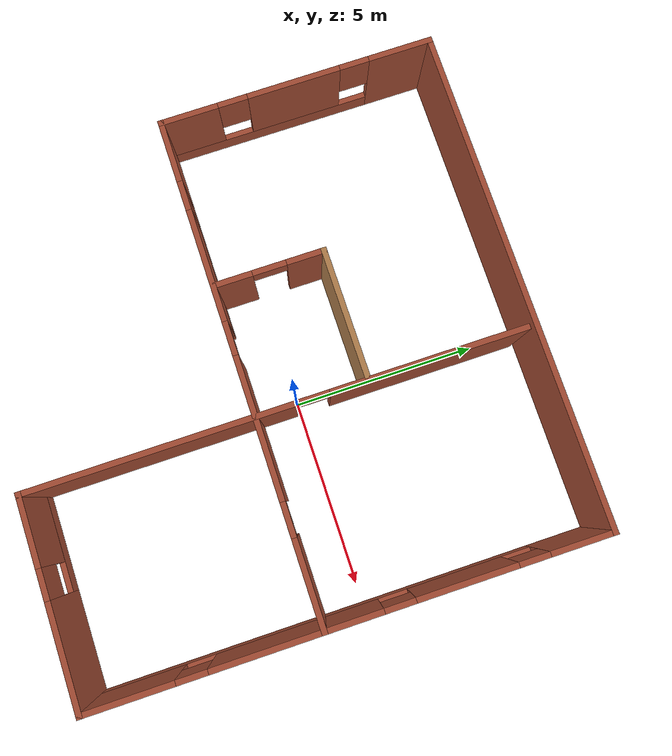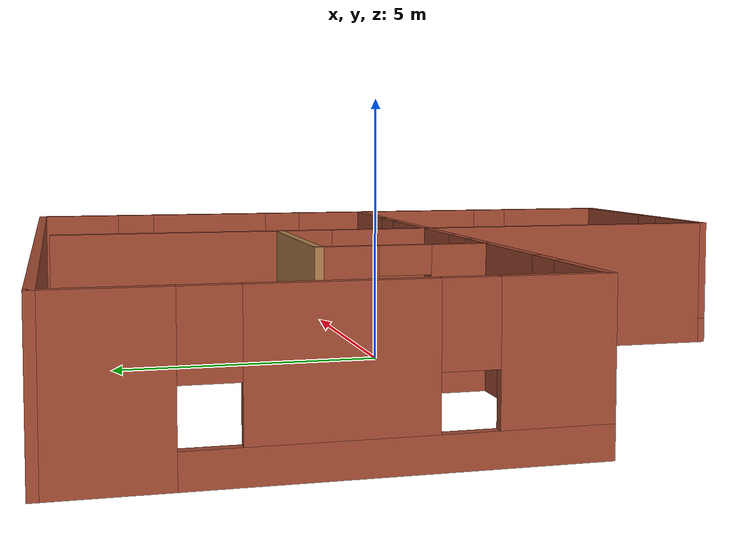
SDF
<?xml version='1.0'?>
<sdf version='1.6'>
  <model name='robot_house'>
    <pose frame=''>-1.10068 -0.427895 0 0 -0 0</pose>
    <link name='Wall_0'>
      <collision name='Wall_0_Collision'>
        <geometry>
          <box>
            <size>13.5 0.15 2.5</size>
          </box>
        </geometry>
        <pose frame=''>0 0 1.25 0 -0 0</pose>
      </collision>
      <visual name='Wall_0_Visual'>
        <pose frame=''>0 0 1.25 0 -0 0</pose>
        <geometry>
          <box>
            <size>13.5 0.15 2.5</size>
          </box>
        </geometry>
        <material>
          <script>
            <uri>file://media/materials/scripts/gazebo.material</uri>
            <name>Gazebo/Bricks</name>
          </script>
          <ambient>1 1 1 1</ambient>
        </material>
        <meta>
          <layer>0</layer>
        </meta>
      </visual>
      <pose frame=''>0 6.675 0 0 -0 0</pose>
    </link>
    <link name='Wall_1'>
      <pose frame=''>6.675 0 0 0 0 -1.5708</pose>
      <visual name='Wall_1_Visual_0'>
        <pose frame=''>-5.88652 0 1.25 0 -0 0</pose>
        <geometry>
          <box>
            <size>1.72695 0.15 2.5</size>
          </box>
        </geometry>
        <material>
          <script>
            <uri>file://media/materials/scripts/gazebo.material</uri>
            <name>Gazebo/Bricks</name>
          </script>
          <ambient>1 1 1 1</ambient>
        </material>
        <meta>
          <layer>0</layer>
        </meta>
      </visual>
      <collision name='Wall_1_Collision_0'>
        <geometry>
          <box>
            <size>1.72695 0.15 2.5</size>
          </box>
        </geometry>
        <pose frame=''>-5.88652 0 1.25 0 -0 0</pose>
      </collision>
      <visual name='Wall_1_Visual_1'>
        <pose frame=''>0.863477 0 0.25 0 -0 0</pose>
        <geometry>
          <box>
            <size>11.773 0.15 0.5</size>
          </box>
        </geometry>
        <material>
          <script>
            <uri>file://media/materials/scripts/gazebo.material</uri>
            <name>Gazebo/Bricks</name>
          </script>
          <ambient>1 1 1 1</ambient>
        </material>
        <meta>
          <layer>0</layer>
        </meta>
      </visual>
      <collision name='Wall_1_Collision_1'>
        <geometry>
          <box>
            <size>11.773 0.15 0.5</size>
          </box>
        </geometry>
        <pose frame=''>0.863477 0 0.25 0 -0 0</pose>
      </collision>
      <visual name='Wall_1_Visual_2'>
        <pose frame=''>-2.92488 0 1.5 0 -0 0</pose>
        <geometry>
          <box>
            <size>2.59634 0.15 2</size>
          </box>
        </geometry>
        <material>
          <script>
            <uri>file://media/materials/scripts/gazebo.material</uri>
            <name>Gazebo/Bricks</name>
          </script>
          <ambient>1 1 1 1</ambient>
        </material>
        <meta>
          <layer>0</layer>
        </meta>
      </visual>
      <collision name='Wall_1_Collision_2'>
        <geometry>
          <box>
            <size>2.59634 0.15 2</size>
          </box>
        </geometry>
        <pose frame=''>-2.92488 0 1.5 0 -0 0</pose>
      </collision>
      <visual name='Wall_1_Visual_3'>
        <pose frame=''>1.35593 0 1.5 0 -0 0</pose>
        <geometry>
          <box>
            <size>4.36526 0.15 2</size>
          </box>
        </geometry>
        <material>
          <script>
            <uri>file://media/materials/scripts/gazebo.material</uri>
            <name>Gazebo/Bricks</name>
          </script>
          <ambient>1 1 1 1</ambient>
        </material>
        <meta>
          <layer>0</layer>
        </meta>
      </visual>
      <collision name='Wall_1_Collision_3'>
        <geometry>
          <box>
            <size>4.36526 0.15 2</size>
          </box>
        </geometry>
        <pose frame=''>1.35593 0 1.5 0 -0 0</pose>
      </collision>
      <visual name='Wall_1_Visual_4'>
        <pose frame=''>5.54428 0 1.5 0 -0 0</pose>
        <geometry>
          <box>
            <size>2.41144 0.15 2</size>
          </box>
        </geometry>
        <material>
          <script>
            <uri>file://media/materials/scripts/gazebo.material</uri>
            <name>Gazebo/Bricks</name>
          </script>
          <ambient>1 1 1 1</ambient>
        </material>
        <meta>
          <layer>0</layer>
        </meta>
      </visual>
      <collision name='Wall_1_Collision_4'>
        <geometry>
          <box>
            <size>2.41144 0.15 2</size>
          </box>
        </geometry>
        <pose frame=''>5.54428 0 1.5 0 -0 0</pose>
      </collision>
      <visual name='Wall_1_Visual_5'>
        <pose frame=''>-4.62305 0 1.9 0 -0 0</pose>
        <geometry>
          <box>
            <size>0.8 0.15 1.2</size>
          </box>
        </geometry>
        <material>
          <script>
            <uri>file://media/materials/scripts/gazebo.material</uri>
            <name>Gazebo/Bricks</name>
          </script>
          <ambient>1 1 1 1</ambient>
        </material>
        <meta>
          <layer>0</layer>
        </meta>
      </visual>
      <collision name='Wall_1_Collision_5'>
        <geometry>
          <box>
            <size>0.8 0.15 1.2</size>
          </box>
        </geometry>
        <pose frame=''>-4.62305 0 1.9 0 -0 0</pose>
      </collision>
      <visual name='Wall_1_Visual_6'>
        <pose frame=''>-1.22671 0 1.9 0 -0 0</pose>
        <geometry>
          <box>
            <size>0.8 0.15 1.2</size>
          </box>
        </geometry>
        <material>
          <script>
            <uri>file://media/materials/scripts/gazebo.material</uri>
            <name>Gazebo/Bricks</name>
          </script>
          <ambient>1 1 1 1</ambient>
        </material>
        <meta>
          <layer>0</layer>
        </meta>
      </visual>
      <collision name='Wall_1_Collision_6'>
        <geometry>
          <box>
            <size>0.8 0.15 1.2</size>
          </box>
        </geometry>
        <pose frame=''>-1.22671 0 1.9 0 -0 0</pose>
      </collision>
      <visual name='Wall_1_Visual_7'>
        <pose frame=''>3.93856 0 1.9 0 -0 0</pose>
        <geometry>
          <box>
            <size>0.8 0.15 1.2</size>
          </box>
        </geometry>
        <material>
          <script>
            <uri>file://media/materials/scripts/gazebo.material</uri>
            <name>Gazebo/Bricks</name>
          </script>
          <ambient>1 1 1 1</ambient>
        </material>
        <meta>
          <layer>0</layer>
        </meta>
      </visual>
      <collision name='Wall_1_Collision_7'>
        <geometry>
          <box>
            <size>0.8 0.15 1.2</size>
          </box>
        </geometry>
        <pose frame=''>3.93856 0 1.9 0 -0 0</pose>
      </collision>
    </link>
    <link name='Wall_2'>
      <pose frame=''>4 -6.675 0 0 -0 3.14159</pose>
      <visual name='Wall_2_Visual_0'>
        <pose frame=''>-1.3497 0 1.25 0 -0 0</pose>
        <geometry>
          <box>
            <size>2.80061 0.15 2.5</size>
          </box>
        </geometry>
        <material>
          <script>
            <uri>file://media/materials/scripts/gazebo.material</uri>
            <name>Gazebo/Bricks</name>
          </script>
          <ambient>1 1 1 1</ambient>
        </material>
        <meta>
          <layer>0</layer>
        </meta>
      </visual>
      <collision name='Wall_2_Collision_0'>
        <geometry>
          <box>
            <size>2.80061 0.15 2.5</size>
          </box>
        </geometry>
        <pose frame=''>-1.3497 0 1.25 0 -0 0</pose>
      </collision>
      <visual name='Wall_2_Visual_1'>
        <pose frame=''>1.4003 0 0.25 0 -0 0</pose>
        <geometry>
          <box>
            <size>2.69939 0.15 0.5</size>
          </box>
        </geometry>
        <material>
          <script>
            <uri>file://media/materials/scripts/gazebo.material</uri>
            <name>Gazebo/Bricks</name>
          </script>
          <ambient>1 1 1 1</ambient>
        </material>
        <meta>
          <layer>0</layer>
        </meta>
      </visual>
      <collision name='Wall_2_Collision_1'>
        <geometry>
          <box>
            <size>2.69939 0.15 0.5</size>
          </box>
        </geometry>
        <pose frame=''>1.4003 0 0.25 0 -0 0</pose>
      </collision>
      <visual name='Wall_2_Visual_2'>
        <pose frame=''>1.8003 0 1.5 0 -0 0</pose>
        <geometry>
          <box>
            <size>1.89939 0.15 2</size>
          </box>
        </geometry>
        <material>
          <script>
            <uri>file://media/materials/scripts/gazebo.material</uri>
            <name>Gazebo/Bricks</name>
          </script>
          <ambient>1 1 1 1</ambient>
        </material>
        <meta>
          <layer>0</layer>
        </meta>
      </visual>
      <collision name='Wall_2_Collision_2'>
        <geometry>
          <box>
            <size>1.89939 0.15 2</size>
          </box>
        </geometry>
        <pose frame=''>1.8003 0 1.5 0 -0 0</pose>
      </collision>
      <visual name='Wall_2_Visual_3'>
        <pose frame=''>0.450605 0 1.9 0 -0 0</pose>
        <geometry>
          <box>
            <size>0.8 0.15 1.2</size>
          </box>
        </geometry>
        <material>
          <script>
            <uri>file://media/materials/scripts/gazebo.material</uri>
            <name>Gazebo/Bricks</name>
          </script>
          <ambient>1 1 1 1</ambient>
        </material>
        <meta>
          <layer>0</layer>
        </meta>
      </visual>
      <collision name='Wall_2_Collision_3'>
        <geometry>
          <box>
            <size>0.8 0.15 1.2</size>
          </box>
        </geometry>
        <pose frame=''>0.450605 0 1.9 0 -0 0</pose>
      </collision>
    </link>
    <link name='Wall_3'>
      <pose frame=''>1.325 -0.125 0 0 -0 1.5708</pose>
      <visual name='Wall_3_Visual_0'>
        <pose frame=''>-3.07392 0 1.25 0 -0 0</pose>
        <geometry>
          <box>
            <size>7.10216 0.15 2.5</size>
          </box>
        </geometry>
        <material>
          <script>
            <uri>file://media/materials/scripts/gazebo.material</uri>
            <name>Gazebo/Bricks</name>
          </script>
          <ambient>1 1 1 1</ambient>
        </material>
        <meta>
          <layer>0</layer>
        </meta>
      </visual>
      <collision name='Wall_3_Collision_0'>
        <geometry>
          <box>
            <size>7.10216 0.15 2.5</size>
          </box>
        </geometry>
        <pose frame=''>-3.07392 0 1.25 0 -0 0</pose>
      </collision>
      <visual name='Wall_3_Visual_1'>
        <pose frame=''>4.00108 0 1.25 0 -0 0</pose>
        <geometry>
          <box>
            <size>5.24784 0.15 2.5</size>
          </box>
        </geometry>
        <material>
          <script>
            <uri>file://media/materials/scripts/gazebo.material</uri>
            <name>Gazebo/Bricks</name>
          </script>
          <ambient>1 1 1 1</ambient>
        </material>
        <meta>
          <layer>0</layer>
        </meta>
      </visual>
      <collision name='Wall_3_Collision_1'>
        <geometry>
          <box>
            <size>5.24784 0.15 2.5</size>
          </box>
        </geometry>
        <pose frame=''>4.00108 0 1.25 0 -0 0</pose>
      </collision>
      <visual name='Wall_3_Visual_2'>
        <pose frame=''>0.927164 0 2.25 0 -0 0</pose>
        <geometry>
          <box>
            <size>0.9 0.15 0.5</size>
          </box>
        </geometry>
        <material>
          <script>
            <uri>file://media/materials/scripts/gazebo.material</uri>
            <name>Gazebo/Bricks</name>
          </script>
          <ambient>1 1 1 1</ambient>
        </material>
        <meta>
          <layer>0</layer>
        </meta>
      </visual>
      <collision name='Wall_3_Collision_2'>
        <geometry>
          <box>
            <size>0.9 0.15 0.5</size>
          </box>
        </geometry>
        <pose frame=''>0.927164 0 2.25 0 -0 0</pose>
      </collision>
    </link>
    <link name='Wall_5'>
      <pose frame=''>-6.675 3 0 0 0 -1.5708</pose>
      <visual name='Wall_5_Visual_0'>
        <pose frame=''>-2.86883 0 1.25 0 -0 0</pose>
        <geometry>
          <box>
            <size>1.76233 0.15 2.5</size>
          </box>
        </geometry>
        <material>
          <script>
            <uri>file://media/materials/scripts/gazebo.material</uri>
            <name>Gazebo/Bricks</name>
          </script>
          <ambient>1 1 1 1</ambient>
        </material>
        <meta>
          <layer>0</layer>
        </meta>
      </visual>
      <collision name='Wall_5_Collision_0'>
        <geometry>
          <box>
            <size>1.76233 0.15 2.5</size>
          </box>
        </geometry>
        <pose frame=''>-2.86883 0 1.25 0 -0 0</pose>
      </collision>
      <visual name='Wall_5_Visual_1'>
        <pose frame=''>0.881167 0 0.25 0 -0 0</pose>
        <geometry>
          <box>
            <size>5.73767 0.15 0.5</size>
          </box>
        </geometry>
        <material>
          <script>
            <uri>file://media/materials/scripts/gazebo.material</uri>
            <name>Gazebo/Bricks</name>
          </script>
          <ambient>1 1 1 1</ambient>
        </material>
        <meta>
          <layer>0</layer>
        </meta>
      </visual>
      <collision name='Wall_5_Collision_1'>
        <geometry>
          <box>
            <size>5.73767 0.15 0.5</size>
          </box>
        </geometry>
        <pose frame=''>0.881167 0 0.25 0 -0 0</pose>
      </collision>
      <visual name='Wall_5_Visual_2'>
        <pose frame=''>0.075124 0 1.5 0 -0 0</pose>
        <geometry>
          <box>
            <size>2.52558 0.15 2</size>
          </box>
        </geometry>
        <material>
          <script>
            <uri>file://media/materials/scripts/gazebo.material</uri>
            <name>Gazebo/Bricks</name>
          </script>
          <ambient>1 1 1 1</ambient>
        </material>
        <meta>
          <layer>0</layer>
        </meta>
      </visual>
      <collision name='Wall_5_Collision_2'>
        <geometry>
          <box>
            <size>2.52558 0.15 2</size>
          </box>
        </geometry>
        <pose frame=''>0.075124 0 1.5 0 -0 0</pose>
      </collision>
      <visual name='Wall_5_Visual_3'>
        <pose frame=''>2.94396 0 1.5 0 -0 0</pose>
        <geometry>
          <box>
            <size>1.61208 0.15 2</size>
          </box>
        </geometry>
        <material>
          <script>
            <uri>file://media/materials/scripts/gazebo.material</uri>
            <name>Gazebo/Bricks</name>
          </script>
          <ambient>1 1 1 1</ambient>
        </material>
        <meta>
          <layer>0</layer>
        </meta>
      </visual>
      <collision name='Wall_5_Collision_3'>
        <geometry>
          <box>
            <size>1.61208 0.15 2</size>
          </box>
        </geometry>
        <pose frame=''>2.94396 0 1.5 0 -0 0</pose>
      </collision>
      <visual name='Wall_5_Visual_4'>
        <pose frame=''>-1.58767 0 1.9 0 -0 0</pose>
        <geometry>
          <box>
            <size>0.8 0.15 1.2</size>
          </box>
        </geometry>
        <material>
          <script>
            <uri>file://media/materials/scripts/gazebo.material</uri>
            <name>Gazebo/Bricks</name>
          </script>
          <ambient>1 1 1 1</ambient>
        </material>
        <meta>
          <layer>0</layer>
        </meta>
      </visual>
      <collision name='Wall_5_Collision_4'>
        <geometry>
          <box>
            <size>0.8 0.15 1.2</size>
          </box>
        </geometry>
        <pose frame=''>-1.58767 0 1.9 0 -0 0</pose>
      </collision>
      <visual name='Wall_5_Visual_5'>
        <pose frame=''>1.73792 0 1.9 0 -0 0</pose>
        <geometry>
          <box>
            <size>0.8 0.15 1.2</size>
          </box>
        </geometry>
        <material>
          <script>
            <uri>file://media/materials/scripts/gazebo.material</uri>
            <name>Gazebo/Bricks</name>
          </script>
          <ambient>1 1 1 1</ambient>
        </material>
        <meta>
          <layer>0</layer>
        </meta>
      </visual>
      <collision name='Wall_5_Collision_5'>
        <geometry>
          <box>
            <size>0.8 0.15 1.2</size>
          </box>
        </geometry>
        <pose frame=''>1.73792 0 1.9 0 -0 0</pose>
      </collision>
    </link>
    <link name='Wall_6'>
      <pose frame=''>0 -0.675 0 0 -0 0</pose>
      <visual name='Wall_6_Visual_0'>
        <pose frame=''>-5.88652 0 1.25 0 -0 0</pose>
        <geometry>
          <box>
            <size>1.72696 0.15 2.5</size>
          </box>
        </geometry>
        <material>
          <script>
            <uri>file://media/materials/scripts/gazebo.material</uri>
            <name>Gazebo/Bricks</name>
          </script>
          <ambient>1 1 1 1</ambient>
        </material>
        <meta>
          <layer>0</layer>
        </meta>
      </visual>
      <collision name='Wall_6_Collision_0'>
        <geometry>
          <box>
            <size>1.72696 0.15 2.5</size>
          </box>
        </geometry>
        <pose frame=''>-5.88652 0 1.25 0 -0 0</pose>
      </collision>
      <visual name='Wall_6_Visual_1'>
        <pose frame=''>1.60358 0 1.25 0 -0 0</pose>
        <geometry>
          <box>
            <size>3.76997 0.15 2.5</size>
          </box>
        </geometry>
        <material>
          <script>
            <uri>file://media/materials/scripts/gazebo.material</uri>
            <name>Gazebo/Bricks</name>
          </script>
          <ambient>1 1 1 1</ambient>
        </material>
        <meta>
          <layer>0</layer>
        </meta>
      </visual>
      <collision name='Wall_6_Collision_1'>
        <geometry>
          <box>
            <size>3.76997 0.15 2.5</size>
          </box>
        </geometry>
        <pose frame=''>1.60358 0 1.25 0 -0 0</pose>
      </collision>
      <visual name='Wall_6_Visual_2'>
        <pose frame=''>5.56928 0 1.25 0 -0 0</pose>
        <geometry>
          <box>
            <size>2.36144 0.15 2.5</size>
          </box>
        </geometry>
        <material>
          <script>
            <uri>file://media/materials/scripts/gazebo.material</uri>
            <name>Gazebo/Bricks</name>
          </script>
          <ambient>1 1 1 1</ambient>
        </material>
        <meta>
          <layer>0</layer>
        </meta>
      </visual>
      <collision name='Wall_6_Collision_2'>
        <geometry>
          <box>
            <size>2.36144 0.15 2.5</size>
          </box>
        </geometry>
        <pose frame=''>5.56928 0 1.25 0 -0 0</pose>
      </collision>
      <visual name='Wall_6_Visual_3'>
        <pose frame=''>-3.10223 0 0.25 0 -0 0</pose>
        <geometry>
          <box>
            <size>3.84164 0.15 0.5</size>
          </box>
        </geometry>
        <material>
          <script>
            <uri>file://media/materials/scripts/gazebo.material</uri>
            <name>Gazebo/Bricks</name>
          </script>
          <ambient>1 1 1 1</ambient>
        </material>
        <meta>
          <layer>0</layer>
        </meta>
      </visual>
      <collision name='Wall_6_Collision_3'>
        <geometry>
          <box>
            <size>3.84164 0.15 0.5</size>
          </box>
        </geometry>
        <pose frame=''>-3.10223 0 0.25 0 -0 0</pose>
      </collision>
      <visual name='Wall_6_Visual_4'>
        <pose frame=''>-2.70223 0 1.5 0 -0 0</pose>
        <geometry>
          <box>
            <size>3.04164 0.15 2</size>
          </box>
        </geometry>
        <material>
          <script>
            <uri>file://media/materials/scripts/gazebo.material</uri>
            <name>Gazebo/Bricks</name>
          </script>
          <ambient>1 1 1 1</ambient>
        </material>
        <meta>
          <layer>0</layer>
        </meta>
      </visual>
      <collision name='Wall_6_Collision_4'>
        <geometry>
          <box>
            <size>3.04164 0.15 2</size>
          </box>
        </geometry>
        <pose frame=''>-2.70223 0 1.5 0 -0 0</pose>
      </collision>
      <visual name='Wall_6_Visual_5'>
        <pose frame=''>-4.62305 0 1.9 0 -0 0</pose>
        <geometry>
          <box>
            <size>0.8 0.15 1.2</size>
          </box>
        </geometry>
        <material>
          <script>
            <uri>file://media/materials/scripts/gazebo.material</uri>
            <name>Gazebo/Bricks</name>
          </script>
          <ambient>1 1 1 1</ambient>
        </material>
        <meta>
          <layer>0</layer>
        </meta>
      </visual>
      <collision name='Wall_6_Collision_5'>
        <geometry>
          <box>
            <size>0.8 0.15 1.2</size>
          </box>
        </geometry>
        <pose frame=''>-4.62305 0 1.9 0 -0 0</pose>
      </collision>
      <visual name='Wall_6_Visual_6'>
        <pose frame=''>3.93856 0 2.25 0 -0 0</pose>
        <geometry>
          <box>
            <size>0.9 0.15 0.5</size>
          </box>
        </geometry>
        <material>
          <script>
            <uri>file://media/materials/scripts/gazebo.material</uri>
            <name>Gazebo/Bricks</name>
          </script>
          <ambient>1 1 1 1</ambient>
        </material>
        <meta>
          <layer>0</layer>
        </meta>
      </visual>
      <collision name='Wall_6_Collision_6'>
        <geometry>
          <box>
            <size>0.9 0.15 0.5</size>
          </box>
        </geometry>
        <pose frame=''>3.93856 0 2.25 0 -0 0</pose>
      </collision>
      <visual name='Wall_6_Visual_7'>
        <pose frame=''>-0.731407 0 2.25 0 -0 0</pose>
        <geometry>
          <box>
            <size>0.9 0.15 0.5</size>
          </box>
        </geometry>
        <material>
          <script>
            <uri>file://media/materials/scripts/gazebo.material</uri>
            <name>Gazebo/Bricks</name>
          </script>
          <ambient>1 1 1 1</ambient>
        </material>
        <meta>
          <layer>0</layer>
        </meta>
      </visual>
      <collision name='Wall_6_Collision_7'>
        <geometry>
          <box>
            <size>0.9 0.15 0.5</size>
          </box>
        </geometry>
        <pose frame=''>-0.731407 0 2.25 0 -0 0</pose>
      </collision>
    </link>
    <link name='Wall_8'>
      <collision name='Wall_8_Collision'>
        <geometry>
          <box>
            <size>3.5 0.15 2.5</size>
          </box>
        </geometry>
        <pose frame=''>0 0 1.25 0 -0 0</pose>
      </collision>
      <visual name='Wall_8_Visual'>
        <pose frame=''>0 0 1.25 0 -0 0</pose>
        <geometry>
          <box>
            <size>3.5 0.15 2.5</size>
          </box>
        </geometry>
        <material>
          <script>
            <uri>file://media/materials/scripts/gazebo.material</uri>
            <name>Gazebo/Wood</name>
          </script>
          <ambient>1 1 1 1</ambient>
        </material>
        <meta>
          <layer>0</layer>
        </meta>
      </visual>
      <pose frame=''>-0.460588 2.25268 0 0 -0 3.14159</pose>
    </link>
    <link name='Wall_9'>
      <pose frame=''>-2.13559 0.827684 0 0 0 -1.5708</pose>
      <visual name='Wall_9_Visual_0'>
        <pose frame=''>-0.96224 0 1.25 0 -0 0</pose>
        <geometry>
          <box>
            <size>1.07552 0.15 2.5</size>
          </box>
        </geometry>
        <material>
          <script>
            <uri>file://media/materials/scripts/gazebo.material</uri>
            <name>Gazebo/Bricks</name>
          </script>
          <ambient>1 1 1 1</ambient>
        </material>
        <meta>
          <layer>0</layer>
        </meta>
      </visual>
      <collision name='Wall_9_Collision_0'>
        <geometry>
          <box>
            <size>1.07552 0.15 2.5</size>
          </box>
        </geometry>
        <pose frame=''>-0.96224 0 1.25 0 -0 0</pose>
      </collision>
      <visual name='Wall_9_Visual_1'>
        <pose frame=''>0.98776 0 1.25 0 -0 0</pose>
        <geometry>
          <box>
            <size>1.02448 0.15 2.5</size>
          </box>
        </geometry>
        <material>
          <script>
            <uri>file://media/materials/scripts/gazebo.material</uri>
            <name>Gazebo/Bricks</name>
          </script>
          <ambient>1 1 1 1</ambient>
        </material>
        <meta>
          <layer>0</layer>
        </meta>
      </visual>
      <collision name='Wall_9_Collision_1'>
        <geometry>
          <box>
            <size>1.02448 0.15 2.5</size>
          </box>
        </geometry>
        <pose frame=''>0.98776 0 1.25 0 -0 0</pose>
      </collision>
      <visual name='Wall_9_Visual_2'>
        <pose frame=''>0.02552 0 2.25 0 -0 0</pose>
        <geometry>
          <box>
            <size>0.9 0.15 0.5</size>
          </box>
        </geometry>
        <material>
          <script>
            <uri>file://media/materials/scripts/gazebo.material</uri>
            <name>Gazebo/Bricks</name>
          </script>
          <ambient>1 1 1 1</ambient>
        </material>
        <meta>
          <layer>0</layer>
        </meta>
      </visual>
      <collision name='Wall_9_Collision_2'>
        <geometry>
          <box>
            <size>0.9 0.15 0.5</size>
          </box>
        </geometry>
        <pose frame=''>0.02552 0 2.25 0 -0 0</pose>
      </collision>
    </link>
    <static>1</static>
  </model>
</sdf>
